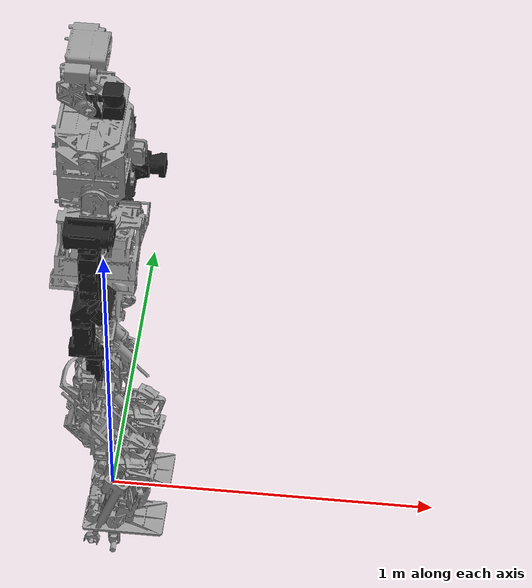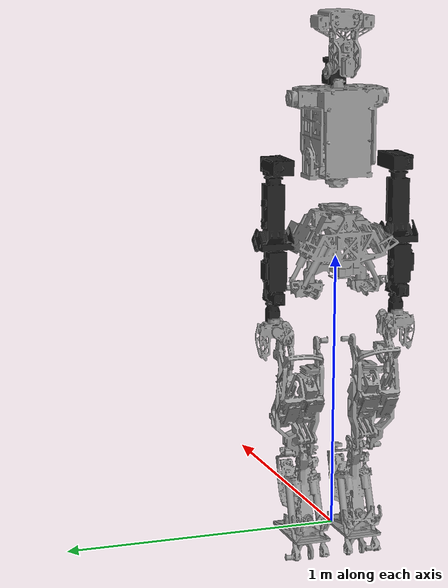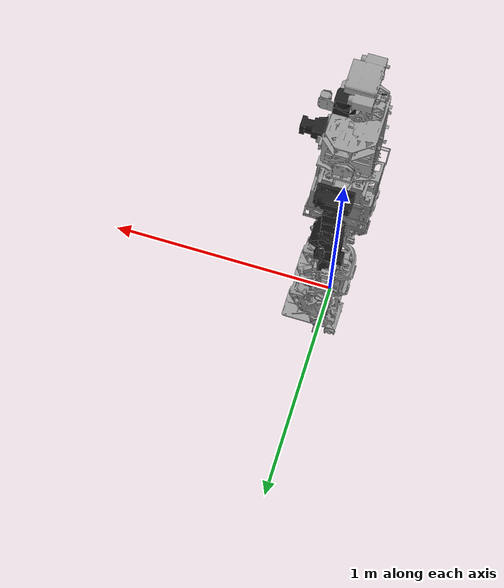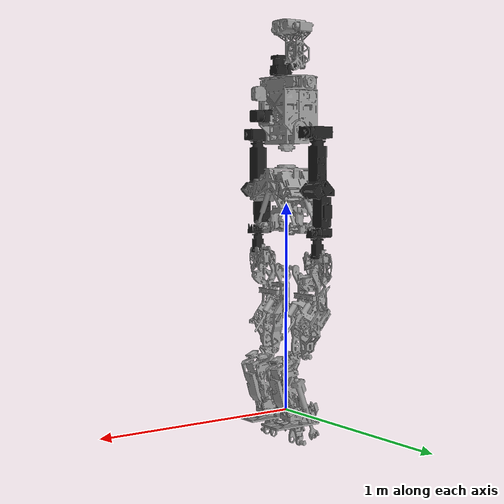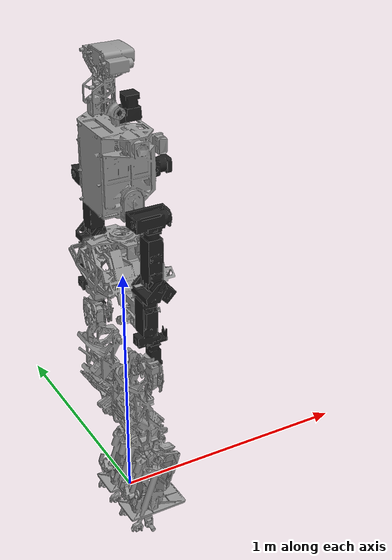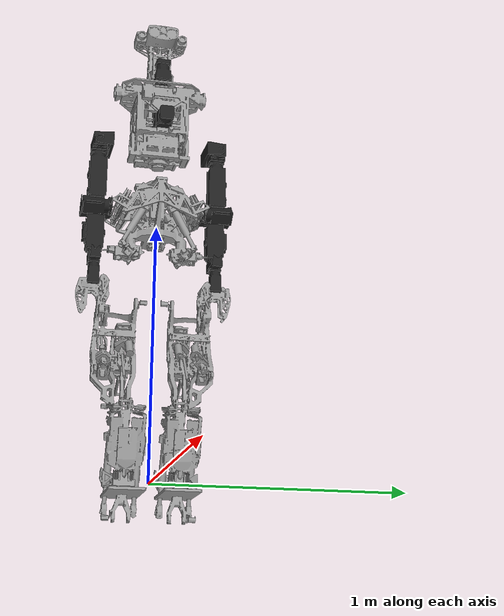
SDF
<?xml version="1.0" ?>
<sdf version="1.4">
<model name="thor">
  <plugin name="gz_comms_manager" filename="libgz_comms_manager.so" />
  <plugin name="gz_pose_manager" filename="libgz_pose_manager.so" />
  <static>false</static>

  <link name="pelvis">
    <pose>-0.0085 0 1.0180015 0 0 0</pose>
    <collision name="pelvis_collision">
      <geometry>
        <box>
          <size>0.25 0.3 0.3299971</size>
        </box>
      </geometry>
    </collision>
    <visual name="pelvis_visual">
      <pose>0.0085 -0 -1.0180015 0 0 0</pose>
      <geometry>
        <mesh>
					<uri>file://thor_description/model/meshes/pelvis.stl</uri>
					<scale>.001 .001 .001</scale>
				</mesh>
      </geometry>
      <material>
        <script>
          <uri>file://media/materials/scripts/gazebo.material</uri>
          <name>Gazebo/Gray</name>
        </script>
      </material>
    </visual>
    <inertial>
      <pose>-0.02034476 -0.000339931 0.014065804 0 0 0</pose>
      <mass>12.227102888619</mass>
      <inertia>
        <ixx>0.168786051</ixx>
        <iyy>0.151804339</iyy>
        <izz>0.183945912</izz>
        <iyz>0.000299081</iyz>
        <ixz>0.000191055</ixz>
        <ixy>0.000230307</ixy>
      </inertia>
    </inertial>
    <sensor name="imu_sensor" type="imu">
      <pose>0 0 0 0 0 1.5707963</pose>
      <always_on>1</always_on>
        <imu>
          <noise>
            <type>gaussian</type>
            <rate>
              <mean>0</mean>
              <stddev>0.0002</stddev>
              <bias_mean>7.5e-06</bias_mean>
              <bias_stddev>8e-07</bias_stddev>
            </rate>
            <accel>
              <mean>0</mean>
              <stddev>0.017</stddev>
              <bias_mean>0.1</bias_mean>
              <bias_stddev>0.001</bias_stddev>
            </accel>
          </noise>
        </imu>
      <visualize>1</visualize>
      <topic>imu_sensor</topic>
    </sensor>
  </link>

  <link name="l_thigh">
    <pose>-0.002281 0.117675 0.6903315 0 0 0</pose>
    <collision name="l_thigh_collision">
      <geometry>
        <box>
          <size>0.1 0.18965 0.4496629</size>
        </box>
      </geometry>
    </collision>
    <visual name="l_thigh_visual">
      <pose>0.0 -0.1 -0.8925 0 0 0</pose>
      <geometry>
        <mesh>
					<uri>file://thor_description/model/meshes/l_thigh.stl</uri>
					<scale>.001 .001 .001</scale>
				</mesh>
      </geometry>
      <material>
        <script>
          <uri>file://media/materials/scripts/gazebo.material</uri>
          <name>Gazebo/Gray</name>
        </script>
      </material>
    </visual>
    <inertial>
      <pose>-0.01776384 0.009771943 -0.017537909 0 0 0</pose>
      <mass>5.13807864986</mass>
      <inertia>
        <ixx>0.050251535</ixx>
        <iyy>0.04823009</iyy>
        <izz>0.01825638</izz>
        <iyz>0.000428731</iyz>
        <ixz>-0.00485734</ixz>
        <ixy>-0.000369726</ixy>
      </inertia>
    </inertial>
  </link>

  <link name="r_thigh">
    <pose>-0.002281 -0.117675 0.6903315 0 0 0</pose>
    <collision name="r_thigh_collision">
      <geometry>
        <box>
          <size>0.1 0.18965 0.4496629</size>
        </box>
      </geometry>
    </collision>
    <visual name="r_thigh_visual">
      <pose>0.0 0.1 -0.8925 0 0 0</pose>
      <geometry>
        <mesh>
					<uri>file://thor_description/model/meshes/r_thigh.stl</uri>
					<scale>.001 .001 .001</scale>
				</mesh>
      </geometry>
      <material>
        <script>
          <uri>file://media/materials/scripts/gazebo.material</uri>
          <name>Gazebo/Gray</name>
        </script>
      </material>
    </visual>
    <inertial>
      <pose>-0.017750387 -0.009800579 -0.017576732 0 0 0</pose>
      <mass>5.1402729320628</mass>
      <inertia>
        <ixx>0.050266937</ixx>
        <iyy>0.048269843</iyy>
        <izz>0.018232029</izz>
        <iyz>-0.000479151</iyz>
        <ixz>-0.004868597</ixz>
        <ixy>0.000400241</ixy>
      </inertia>
    </inertial>
  </link>

  <link name="l_shin">
    <pose>0.0190724 0.1021182 0.2811108 0 0 0</pose>
    <collision name="l_shin_collision">
      <geometry>
        <box>
          <size>0.1 0.13 0.4512008</size>
        </box>
      </geometry>
    </collision>
    <visual name="l_shin_visual">
      <pose>-0.0 -0.10 -0.4825 0 0 0</pose>
      <geometry>
        <mesh>
					<uri>file://thor_description/model/meshes/l_shin.stl</uri>
					<scale>.001 .001 .001</scale>
				</mesh>
      </geometry>
      <material>
        <script>
          <uri>file://media/materials/scripts/gazebo.material</uri>
          <name>Gazebo/Gray</name>
        </script>
      </material>
    </visual>
    <inertial>
      <pose>0.016452175 -0.001617389 0.041544431 0 0 0</pose>
      <mass>4.2301928995278</mass>
      <inertia>
        <ixx>0.042672286</ixx>
        <iyy>0.043770804</iyy>
        <izz>0.012910027</izz>
        <iyz>-0.000372327</iyz>
        <ixz>0.005863435</ixz>
        <ixy>-4.6942e-05</ixy>
      </inertia>
    </inertial>
  </link>

  <link name="r_shin">
    <pose>0.0190724 -0.1021182 0.2811108 0 0 0</pose>
    <collision name="r_shin_collision">
      <geometry>
        <box>
          <size>0.1 0.13 0.4512008</size>
        </box>
      </geometry>
    </collision>
    <visual name="r_shin_visual">
      <pose>-0.0 0.10 -0.4825 0 0 0</pose>
      <geometry>
        <mesh>
					<uri>file://thor_description/model/meshes/r_shin.stl</uri>
					<scale>.001 .001 .001</scale>
				</mesh>
      </geometry>
      <material>
        <script>
          <uri>file://media/materials/scripts/gazebo.material</uri>
          <name>Gazebo/Gray</name>
        </script>
      </material>
    </visual>
    <inertial>
      <pose>0.016452169 0.001835239 0.041544431 0 0 0</pose>
      <mass>4.2301928995278</mass>
      <inertia>
        <ixx>0.042672987</ixx>
        <iyy>0.043770806</iyy>
        <izz>0.012910729</izz>
        <iyz>0.000406027</iyz>
        <ixz>0.005863442</ixz>
        <ixy>6.7751e-05</ixy>
      </inertia>
    </inertial>
  </link>

  <link name="l_foot">
    <pose>0.025 0.1 0.0266724 0 0 0</pose>
    <collision name="l_foot_collision">
      <geometry>
        <box>
          <size>0.25 0.1485 0.05493235</size>
        </box>
      </geometry>
      <!-- From atlas model -->
      <surface>
        <friction>
          <ode>
            <mu>0.9</mu>
            <mu2>0.9</mu2>
            <fdir1>1 0 0</fdir1>
          </ode>
        </friction>
        <contact>
          <ode>
            <max_vel>1.0</max_vel>
            <min_depth>0.003</min_depth>
          </ode>
        </contact>
      </surface>
    </collision>
    <visual name="l_foot_visual">
      <pose>-0.0 -0.1 -0.0725 0 0 0</pose>
      <geometry>
        <mesh>
					<uri>file://thor_description/model/meshes/l_foot.stl</uri>
					<scale>.001 .001 .001</scale>
				</mesh>
      </geometry>
      <material>
        <script>
          <uri>file://media/materials/scripts/gazebo.material</uri>
          <name>Gazebo/Gray</name>
        </script>
      </material>
    </visual>
    <inertial>
      <pose>-0.028042516 0.00096434599999999 0.005344341 0 0 0</pose>
      <mass>1.7169625926048</mass>
      <inertia>
        <ixx>0.00336244</ixx>
        <iyy>0.006955959</iyy>
        <izz>0.007417438</izz>
        <iyz>3.0838e-05</iyz>
        <ixz>-0.001236319</ixz>
        <ixy>5.764e-06</ixy>
      </inertia>
    </inertial>
  </link>

  <link name="r_foot">
    <pose>0.025 -0.10075 0.0266724 0 0 0</pose>
    <collision name="r_foot_collision">
      <geometry>
        <box>
          <size>0.25 0.1485 0.05493235</size>
        </box>
      </geometry>
      <!-- From atlas model -->
      <surface>
        <friction>
          <ode>
            <mu>0.9</mu>
            <mu2>0.9</mu2>
            <fdir1>1 0 0</fdir1>
          </ode>
        </friction>
        <contact>
          <ode>
            <max_vel>1.0</max_vel>
            <min_depth>0.003</min_depth>
          </ode>
        </contact>
      </surface>
    </collision>
    <visual name="r_foot_visual">
      <pose>-0.0 0.1 -0.0725 0 0 0</pose>
      <geometry>
        <mesh>
					<uri>file://thor_description/model/meshes/r_foot.stl</uri>
					<scale>.001 .001 .001</scale>
				</mesh>
      </geometry>
      <material>
        <script>
          <uri>file://media/materials/scripts/gazebo.material</uri>
          <name>Gazebo/Gray</name>
        </script>
      </material>
    </visual>
    <inertial>
      <pose>-0.027942557 -0.00019983899999999 0.005337142 0 0 0</pose>
      <mass>1.7201733736363</mass>
      <inertia>
        <ixx>0.003363358</ixx>
        <iyy>0.006961913</iyy>
        <izz>0.007424205</izz>
        <iyz>-3.0884e-05</iyz>
        <ixz>-0.001236643</ixz>
        <ixy>-3.631e-06</ixy>
      </inertia>
    </inertial>
  </link>

  <link name="l_hip_yaw_trunnion">
    <pose>0 0.1 0.8925 0 0 0</pose>
    <!-- Axis = "z", -->
    <inertial>
      <mass>0.051573426573425</mass>
      <inertia>
        <ixx>0.0085833333333333</ixx>
        <iyy>0.0085833333333333</iyy>
        <izz>0.00075</izz>
        <ixy>0</ixy>
        <ixz>0</ixz>
        <iyz>0</iyz>
      </inertia>
    </inertial>
  </link>

  <link name="r_hip_yaw_trunnion">
    <pose>0 -0.1 0.8925 0 0 0</pose>
    <!-- Axis = "z", -->
    <inertial>
      <mass>0.051573426573425</mass>
      <inertia>
        <ixx>0.0085833333333333</ixx>
        <iyy>0.0085833333333333</iyy>
        <izz>0.00075</izz>
        <ixy>0</ixy>
        <ixz>0</ixz>
        <iyz>0</iyz>
      </inertia>
    </inertial>
  </link>

  <link name="l_hip_pitch_trunnion">
    <pose>0 0.1 0.8925 0 0 0</pose>
    <!-- Axis = "y", -->
    <inertial>
      <pose>0 0 0 1.5707963267949 0 0</pose>
      <mass>0.051573426573425</mass>
      <inertia>
        <ixx>0.0085833333333333</ixx>
        <iyy>0.0085833333333333</iyy>
        <izz>0.00075</izz>
        <ixy>0</ixy>
        <ixz>0</ixz>
        <iyz>0</iyz>
      </inertia>
    </inertial>
  </link>

  <link name="r_hip_pitch_trunnion">
    <pose>0 -0.1 0.8925 0 0 0</pose>
    <!-- Axis = "y", -->
    <inertial>
      <pose>0 0 0 1.5707963267949 0 0</pose>
      <mass>0.051573426573425</mass>
      <inertia>
        <ixx>0.0085833333333333</ixx>
        <iyy>0.0085833333333333</iyy>
        <izz>0.00075</izz>
        <ixy>0</ixy>
        <ixz>0</ixz>
        <iyz>0</iyz>
      </inertia>
    </inertial>
  </link>

  <link name="l_ankle_pitch_trunnion">
    <pose>0 0.1 0.0725 0 0 0</pose>
    <!-- Axis = "y", -->
    <inertial>
      <pose>0 0 0 1.5707963267949 0 0</pose>
      <mass>0.051573426573425</mass>
      <inertia>
        <ixx>0.0085833333333333</ixx>
        <iyy>0.0085833333333333</iyy>
        <izz>0.00075</izz>
        <ixy>0</ixy>
        <ixz>0</ixz>
        <iyz>0</iyz>
      </inertia>
    </inertial>
  </link>

  <link name="r_ankle_pitch_trunnion">
    <pose>0 -0.1 0.0725 0 0 0</pose>
    <!-- Axis = "y", -->
    <inertial>
      <pose>0 0 0 1.5707963267949 0 0</pose>
      <mass>0.051573426573425</mass>
      <inertia>
        <ixx>0.0085833333333333</ixx>
        <iyy>0.0085833333333333</iyy>
        <izz>0.00075</izz>
        <ixy>0</ixy>
        <ixz>0</ixz>
        <iyz>0</iyz>
      </inertia>
    </inertial>
  </link>

  <joint name="l_hip_yaw" type="revolute">
    <parent>
      pelvis
    </parent>
    <child>
      l_hip_yaw_trunnion
    </child>
    <axis>
      <xyz>0 0 1</xyz>
      <limit>
        <lower>-0.34906585039887</lower>
        <upper>0.78539816339745</upper>
        <effort>150</effort>
        <velocity>12</velocity>
      </limit>
      <dynamics>
        <damping>1.0</damping>
        <friction>0</friction>
      </dynamics>
    </axis>
    <physics>
      <ode>
        <cfm_damping>1</cfm_damping>
      </ode>
    </physics>
  </joint>

  <joint name="r_hip_yaw" type="revolute">
    <parent>
      pelvis
    </parent>
    <child>
      r_hip_yaw_trunnion
    </child>
    <axis>
      <xyz>0 0 1</xyz>
      <limit>
        <lower>-0.78539816339745</lower>
        <upper>0.34906585039887</upper>
        <effort>150</effort>
        <velocity>12</velocity>
      </limit>
      <dynamics>
        <damping>1.0</damping>
        <friction>0</friction>
      </dynamics>
    </axis>
    <physics>
      <ode>
        <cfm_damping>1</cfm_damping>
      </ode>
    </physics>
  </joint>

  <joint name="l_hip_roll" type="revolute">
    <parent>
      l_hip_yaw_trunnion
    </parent>
    <child>
      l_hip_pitch_trunnion
    </child>
    <axis>
      <xyz>1 0 0</xyz>
      <limit>
        <lower>-0.5235987755983</lower>
        <upper>0.78539816339745</upper>
        <effort>150</effort>
        <velocity>12</velocity>
      </limit>
      <dynamics>
        <damping>1.0</damping>
        <friction>0</friction>
      </dynamics>
    </axis>
    <physics>
      <ode>
        <cfm_damping>1</cfm_damping>
      </ode>
    </physics>
  </joint>

  <joint name="r_hip_roll" type="revolute">
    <parent>
      r_hip_yaw_trunnion
    </parent>
    <child>
      r_hip_pitch_trunnion
    </child>
    <axis>
      <xyz>1 0 0</xyz>
      <limit>
        <lower>-0.78539816339745</lower>
        <upper>0.5235987755983</upper>
        <effort>150</effort>
        <velocity>12</velocity>
      </limit>
      <dynamics>
        <damping>1.0</damping>
        <friction>0</friction>
      </dynamics>
    </axis>
    <physics>
      <ode>
        <cfm_damping>1</cfm_damping>
      </ode>
    </physics>
  </joint>

  <joint name="l_hip_pitch" type="revolute">
    <pose>0.002281 -0.017675 0.2021685 0 0 0</pose>
    <parent>
      l_hip_pitch_trunnion
    </parent>
    <child>
      l_thigh
    </child>
    <axis>
      <xyz>0 1 0</xyz>
      <limit>
        <lower>-2.0943951023932</lower>
        <upper>0.5235987755983</upper>
        <effort>150</effort>
        <velocity>12</velocity>
      </limit>
      <dynamics>
        <damping>1.0</damping>
        <friction>0</friction>
      </dynamics>
    </axis>
    <physics>
      <ode>
        <cfm_damping>1</cfm_damping>
      </ode>
    </physics>
  </joint>

  <joint name="r_hip_pitch" type="revolute">
    <pose>0.002281 0.017675 0.2021685 0 0 0</pose>
    <parent>
      r_hip_pitch_trunnion
    </parent>
    <child>
      r_thigh
    </child>
    <axis>
      <xyz>0 1 0</xyz>
      <limit>
        <lower>-2.0943951023932</lower>
        <upper>0.5235987755983</upper>
        <effort>150</effort>
        <velocity>12</velocity>
      </limit>
      <dynamics>
        <damping>1.0</damping>
        <friction>0</friction>
      </dynamics>
    </axis>
    <physics>
      <ode>
        <cfm_damping>1</cfm_damping>
      </ode>
    </physics>
  </joint>

  <joint name="l_knee_pitch" type="revolute">
    <pose>-0.0190724 -0.0021182 0.2013892 0 0 0</pose>
    <parent>
      l_thigh
    </parent>
    <child>
      l_shin
    </child>
    <axis>
      <xyz>0 1 0</xyz>
      <limit>
        <lower>0</lower>
        <upper>2.3561944901923</upper>
        <effort>150</effort>
        <velocity>12</velocity>
      </limit>
      <dynamics>
        <damping>1.0</damping>
        <friction>0</friction>
      </dynamics>
    </axis>
    <physics>
      <ode>
        <cfm_damping>1</cfm_damping>
      </ode>
    </physics>
  </joint>

  <joint name="r_knee_pitch" type="revolute">
    <pose>-0.0190724 0.0021182 0.2013892 0 0 0</pose>
    <parent>
      r_thigh
    </parent>
    <child>
      r_shin
    </child>
    <axis>
      <xyz>0 1 0</xyz>
      <limit>
        <lower>0</lower>
        <upper>2.3561944901923</upper>
        <effort>150</effort>
        <velocity>12</velocity>
      </limit>
      <dynamics>
        <damping>1.0</damping>
        <friction>0</friction>
      </dynamics>
    </axis>
    <physics>
      <ode>
        <cfm_damping>1</cfm_damping>
      </ode>
    </physics>
  </joint>

  <joint name="l_ankle_pitch" type="revolute">
    <parent>
      l_shin
    </parent>
    <child>
      l_ankle_pitch_trunnion
    </child>
    <axis>
      <xyz>0 1 0</xyz>
      <limit>
        <lower>-0.95993108859688</lower>
        <upper>0.61086523819802</upper>
        <effort>150</effort>
        <velocity>12</velocity>
      </limit>
      <dynamics>
        <damping>1.0</damping>
        <friction>0</friction>
      </dynamics>
    </axis>
    <physics>
      <ode>
        <cfm_damping>1</cfm_damping>
      </ode>
    </physics>
  </joint>

  <joint name="r_ankle_pitch" type="revolute">
    <parent>
      r_shin
    </parent>
    <child>
      r_ankle_pitch_trunnion
    </child>
    <axis>
      <xyz>0 1 0</xyz>
      <limit>
        <lower>-0.95993108859688</lower>
        <upper>0.61086523819802</upper>
        <effort>150</effort>
        <velocity>12</velocity>
      </limit>
      <dynamics>
        <damping>1.0</damping>
        <friction>0</friction>
      </dynamics>
    </axis>
    <physics>
      <ode>
        <cfm_damping>1</cfm_damping>
      </ode>
    </physics>
  </joint>

  <joint name="l_ankle_roll" type="revolute">
    <pose>-0.025 0 0.0458276 0 0 0</pose>
    <parent>
      l_ankle_pitch_trunnion
    </parent>
    <child>
      l_foot
    </child>
    <axis>
      <xyz>1 0 0</xyz>
      <limit>
        <lower>-0.5235987755983</lower>
        <upper>0.5235987755983</upper>
        <effort>150</effort>
        <velocity>12</velocity>
      </limit>
      <dynamics>
        <damping>1.0</damping>
        <friction>0</friction>
      </dynamics>
    </axis>
    <physics>
      <provide_feedback>1</provide_feedback>
      <ode>
        <cfm_damping>1</cfm_damping>
      </ode>
    </physics>
    <sensor name="l_foot_contact_sensor" type="force_torque">
      <pose>0.025 0.1 0.0266724 0 0 0</pose>
        <always_on>1</always_on>
        <update_rate>1000</update_rate>
        <force_torque>
          <frame>sensor</frame>
        </force_torque>
    </sensor>
  </joint>

  <joint name="r_ankle_roll" type="revolute">
    <pose>-0.025 0.00075 0.0458276 0 0 0</pose>
    <parent>
      r_ankle_pitch_trunnion
    </parent>
    <child>
      r_foot
    </child>
    <axis>
      <xyz>1 0 0</xyz>
      <limit>
        <lower>-0.5235987755983</lower>
        <upper>0.5235987755983</upper>
        <effort>150</effort>
        <velocity>12</velocity>
      </limit>
      <dynamics>
        <damping>1.0</damping>
        <friction>0</friction>
      </dynamics>
    </axis>
    <physics>
      <provide_feedback>1</provide_feedback>
      <ode>
        <cfm_damping>1</cfm_damping>
      </ode>
    </physics>
    <sensor name="r_foot_contact_sensor" type="force_torque">
      <pose>0.025 -0.10075 0.0266724 0 0 0</pose>
      <always_on>1</always_on>
      <contact>
        <collision>r_foot_collision</collision>
      </contact>
    </sensor>
  </joint>

  <joint name="torso_yaw" type="revolute">
    <parent>
      pelvis
    </parent>
    <child>
      waist_pitch_trunnion
    </child>
    <axis>
      <xyz>0 0 1</xyz>
      <limit>
        <lower>-0.78539816339745</lower>
        <upper>0.78539816339745</upper>
        <effort>150</effort>
        <velocity>12</velocity>
      </limit>
      <dynamics>
        <damping>1.0</damping>
        <friction>0</friction>
      </dynamics>
    </axis>
    <physics>
      <ode>
        <cfm_damping>1</cfm_damping>
      </ode>
    </physics>
  </joint>

  <link name="waist_pitch_trunnion">
    <pose>0 0 1.2575 0 0 0</pose>
    <!-- Axis = "y", -->
    <inertial>
      <pose>0 0 0 1.5707963267949 0 0</pose>
      <mass>0.051573426573425</mass>
      <inertia>
        <ixx>0.0085833333333333</ixx>
        <iyy>0.0085833333333333</iyy>
        <izz>0.00075</izz>
        <ixy>0</ixy>
        <ixz>0</ixz>
        <iyz>0</iyz>
      </inertia>
    </inertial>
  </link>

  <joint name="torso_pitch" type="revolute">
    <pose>-0.001 0 -0.09375 0 0 0</pose>
    <parent>
      waist_pitch_trunnion
    </parent>
    <child>
      chest
    </child>
    <axis>
      <xyz>0 1 0</xyz>
      <limit>
        <lower>-0.34906585039887</lower>
        <upper>0.34906585039887</upper>
        <effort>150</effort>
        <velocity>12</velocity>
      </limit>
      <dynamics>
        <damping>1.0</damping>
        <friction>0</friction>
      </dynamics>
    </axis>
    <physics>
      <ode>
        <cfm_damping>1</cfm_damping>
      </ode>
    </physics>
  </joint>

  <link name="chest">
    <pose>0.001 0 1.35125 0 0 0</pose>
    <collision name="chest_collision">
      <geometry>
        <box>
          <size>0.25 0.3 0.3685</size>
        </box>
      </geometry>
    </collision>
    <visual name="chest_visual">
      <pose>-0.001 -0 -1.2575 0 0 0</pose>
      <geometry>
        <mesh>
					<uri>file://thor_description/model/meshes/chest.stl</uri>
					<scale>.001 .001 .001</scale>
				</mesh>
      </geometry>
      <material>
        <script>
          <uri>file://media/materials/scripts/gazebo.material</uri>
          <name>Gazebo/Gray</name>
        </script>
      </material>
    </visual>
    <inertial>
      <pose>-0.010475235 0.003477582 0.016042633 0 0 0</pose>
      <mass>8.9112224908039</mass>
      <inertia>
        <ixx>0.212139518</ixx>
        <iyy>0.177608078</iyy>
        <izz>0.082558505</izz>
        <iyz>0.000482353</iyz>
        <ixz>-0.001780773</ixz>
        <ixy>0.000361146</ixy>
      </inertia>
    </inertial>
    <sensor name="camera.ptgrey" type="camera">
      <pose>0.1323009 -0.0675 0.2217387 0 0.611 0</pose>
      <camera>
        <horizontal_fov>1.75</horizontal_fov>
        <image>
          <width>640</width>
          <height>480</height>
          <format>R8G8B8</format>
        </image>
        <clip>
          <near>0.5</near>
          <far>30</far>
        </clip>
        <noise>
          <type>gaussian</type>
          <!-- Noise is sampled independently per pixel on each frame.
               That pixel's noise value is added to each of its color
               channels, which at that point lie in the range [0,1]. -->
          <mean>0.0</mean>
          <stddev>0.007</stddev>
        </noise>
      </camera>
      <plugin name="camera_controller" filename="libgazebo_ros_camera.so">
        <alwaysOn>true</alwaysOn>
        <updateRate>30.0</updateRate>
        <cameraName>chest/camera</cameraName>
        <imageTopicName>image_raw</imageTopicName>
        <cameraInfoTopicName>camera_info</cameraInfoTopicName>
        <frameName>camera.ptgrey</frameName>
        <hackBaseline>0.0</hackBaseline>
        <distortionK1>-0.293600</distortionK1>
        <distortionK2>0.212124</distortionK2>
        <distortionK3>-0.138326</distortionK3>
        <distortionT1>0.000764</distortionT1>
        <distortionT2>-0.000452</distortionT2>
      </plugin>
    </sensor>
  </link>

  <joint name="chest_lidar_pitch" type="revolute">
    <pose>-0.021 0.0075 -0.00099999999999989 0 0 0</pose>
    <parent>
      chest
    </parent>
    <child>
      chest_lidar
    </child>
    <axis>
      <xyz>0 1 0</xyz>
      <limit>
        <lower>-1.5707963267949</lower>
        <upper>1.5707963267949</upper>
        <effort>150</effort>
        <velocity>12</velocity>
      </limit>
      <dynamics>
        <damping>1.0</damping>
        <friction>0</friction>
      </dynamics>
    </axis>
    <physics>
      <ode>
        <cfm_damping>1</cfm_damping>
      </ode>
    </physics>
  </joint>

  <link name="chest_lidar">
    <pose>0.1491 -0.0075 1.41085 0 0 0</pose>
    <collision name="chest_lidar_collision">
      <geometry>
        <box>
          <size>0.092 0.075 0.062</size>
        </box>
      </geometry>
    </collision>
    <visual name="chest_lidar_visual">
      <pose>-0.1491 0.0075 -1.41085 0 0 0</pose>
      <geometry>
        <mesh>
					<uri>file://thor_description/model/meshes/chest_lidar.stl</uri>
					<scale>.001 .001 .001</scale>
				</mesh>
      </geometry>
      <material>
        <script>
          <uri>file://media/materials/scripts/gazebo.material</uri>
          <name>Gazebo/Black</name>
        </script>
      </material>
    </visual>
    <inertial>
      <pose>-0.009435154 0.00438778 -0.00088571400000004 0 0 0</pose>
      <mass>0.051573426573425</mass>
      <inertia>
        <ixx>0.000203256</ixx>
        <iyy>0.00035346</iyy>
        <izz>0.000382989</izz>
        <iyz>1.17e-07</iyz>
        <ixz>2.32e-07</ixz>
        <ixy>2.6199e-05</ixy>
      </inertia>
    </inertial>
    <sensor name="lidar.chest_hokuyo" type="ray">
      <!-- Hokuyo UTM-30LX-EW -->
      <always_on>1</always_on>
      <update_rate>40</update_rate>
      <pose>0.0195 0.0495 -0.00099999999999989 0 1.57079633 0</pose>
      <ray>
        <scan>
          <horizontal>
            <samples>1081</samples>
            <resolution>1</resolution>
            <min_angle>-2.35619449</min_angle>
            <max_angle>2.35619449</max_angle>
          </horizontal>
        </scan>
        <range>
          <min>.1</min>
          <max>70</max>
          <resolution>.05</resolution>
        </range>
        <noise>
          <type>gaussian</type>
          <mean>0.0</mean>
          <stddev>0.01</stddev>
        </noise>
      </ray>
      <plugin name="gazebo_ros_chest_hokuyo" filename="libgazebo_ros_laser.so">
        <topicName>/chest/laser/scan/</topicName>
        <frameName>chest_lidar_emitter</frameName>
      </plugin>
    </sensor>
  </link>

  <joint name="neck_yaw" type="revolute">
    <pose>0 -0.003 -0.024025 0 0 0</pose>
    <parent>
      chest
    </parent>
    <child>
      neck
    </child>
    <axis>
      <xyz>0 0 1</xyz>
      <limit>
        <lower>-1.5707963267949</lower>
        <upper>1.5707963267949</upper>
        <effort>150</effort>
        <velocity>12</velocity>
      </limit>
      <dynamics>
        <damping>1.0</damping>
        <friction>0</friction>
      </dynamics>
    </axis>
    <physics>
      <ode>
        <cfm_damping>1</cfm_damping>
      </ode>
    </physics>
  </joint>

  <link name="neck">
    <pose>0 0.003 1.559525 0 0 0</pose>
    <collision name="neck_collision">
      <geometry>
        <box>
          <size>0.0541 0.096 0.05405</size>
        </box>
      </geometry>
    </collision>
    <visual name="neck_visual">
      <pose>-0 0.0 -1.5625 0 0 0</pose>-->
      <geometry>
        <mesh>
					<uri>file://thor_description/model/meshes/neck.stl</uri>
					<scale>.001 .001 .001</scale>
				</mesh>
      </geometry>
      <material>
        <script>
          <uri>file://media/materials/scripts/gazebo.material</uri>
          <name>Gazebo/Gray</name>
        </script>
      </material>
    </visual>
    <inertial>
      <pose>1.2e-08 -0.002875317 0.00050305599999989 0 0 0</pose>
      <mass>0.42837005699299</mass>
      <inertia>
        <ixx>0.000336505</ixx>
        <iyy>0.000143407</iyy>
        <izz>0.000323735</izz>
        <iyz>-8.463e-06</iyz>
        <ixz>0</ixz>
        <ixy>-0</ixy>
      </inertia>
    </inertial>
  </link>

  <joint name="neck_pitch" type="revolute">
    <pose>0.0142568 0 -0.08855 0 0 0</pose>
    <parent>
      neck
    </parent>
    <child>
      head
    </child>
    <axis>
      <xyz>0 1 0</xyz>
      <limit>
        <lower>-0.5235987755983</lower>
        <upper>1.0471975511966</upper>
        <effort>150</effort>
        <velocity>12</velocity>
      </limit>
      <dynamics>
        <damping>1.0</damping>
        <friction>0</friction>
      </dynamics>
    </axis>
    <physics>
      <ode>
        <cfm_damping>1</cfm_damping>
      </ode>
    </physics>
  </joint>

  <link name="head">
    <pose>-0.0142568 0 1.65105 0 0 0</pose>
    <collision name="head_collision">
      <geometry>
        <box>
          <size>0.155386 0.102 0.2191</size>
        </box>
      </geometry>
    </collision>
    <visual name="head_visual">
      <pose>0.0 -0 -1.5625 0 0 0</pose>
      <geometry>
        <mesh>
					<uri>file://thor_description/model/meshes/head.stl</uri>
					<scale>.001 .001 .001</scale>
				</mesh>
      </geometry>
      <material>
        <script>
          <uri>file://media/materials/scripts/gazebo.material</uri>
          <name>Gazebo/Gray</name>
        </script>
      </material>
    </visual>
    <inertial>
      <pose>-0.004959974 4.1336e-05 0.056361706 0 0 0</pose>
      <mass>2.2650798087587</mass>
      <inertia>
        <ixx>0.013808097</ixx>
        <iyy>0.011370053</iyy>
        <izz>0.007199137</izz>
        <iyz>-9.74e-06</iyz>
        <ixz>0.002271466</ixz>
        <ixy>1.389e-06</ixy>
      </inertia>
    </inertial>
      <sensor name='stereo_camera' type='multicamera'>
        <update_rate>10</update_rate>
        <camera name='left'>
          <horizontal_fov>1.39626</horizontal_fov>
          <image>
            <width>1024</width>
            <height>544</height>
            <format>R8G8B8</format>
          </image>
          <clip>
            <near>0.02</near>
            <far>300</far>
          </clip>
          <noise>
            <type>gaussian</type>
            <mean>0</mean>
            <stddev>0.007</stddev>
          </noise>
        </camera>
        <camera name='right'>
          <pose frame=''>0 -0.07 0 0 -0 0</pose>
          <horizontal_fov>1.39626</horizontal_fov>
          <image>
            <width>1024</width>
            <height>544</height>
            <format>R8G8B8</format>
          </image>
          <clip>
            <near>0.02</near>
            <far>300</far>
          </clip>
          <noise>
            <type>gaussian</type>
            <mean>0</mean>
            <stddev>0.007</stddev>
          </noise>
        </camera>
        <pose frame=''>0.183847 -0.035 0.0773366 -3.14159 0.1309 5.33964e-23</pose>
      </sensor>
</link>

  <joint name="head_hokuyo_joint" type="revolute">
    <pose>-0.0098 0 0 0 0 0</pose>
    <parent>
      head
    </parent>
    <child>
      head_hokuyo_link
    </child>
    <axis>
      <xyz>1 0 0</xyz>
      <limit>
        <lower>-1e+16</lower>
        <upper>1e+16</upper>
        <effort>150</effort>
        <velocity>12</velocity>
      </limit>
      <dynamics>
        <damping>1.0</damping>
        <friction>0</friction>
      </dynamics>
    </axis>
    <physics>
      <ode>
        <cfm_damping>1</cfm_damping>
      </ode>
    </physics>
  </joint>

  <link name="head_hokuyo_link">
    <pose>0.0098 0 1.6515 0 0 0</pose>
    <collision name="head_hokuyo_link_collision">
      <geometry>
        <box>
          <size>0.1395 0.06 0.093</size>
        </box>
      </geometry>
    </collision>
    <visual name="head_hokuyo_link_visual">
      <pose>-0.0098 -0 -1.6515 0 0 0</pose>
      <geometry>
        <mesh>
					<uri>file://thor_description/model/meshes/head_lidar.stl</uri>
					<scale>.001 .001 .001</scale>
				</mesh>
      </geometry>
      <material>
        <script>
          <uri>file://media/materials/scripts/gazebo.material</uri>
          <name>Gazebo/Black</name>
        </script>
      </material>
    </visual>
    <inertial>
      <pose>0.015857021 -2.21e-06 -0.0076187240000001 0 0 0</pose>
      <mass>0.44774993965034</mass>
      <inertia>
        <ixx>0.000368817</ixx>
        <iyy>0.00087532</iyy>
        <izz>0.000707833</izz>
        <iyz>-2.1e-08</iyz>
        <ixz>-7.653e-06</ixz>
        <ixy>5.5e-08</ixy>
      </inertia>
    </inertial>
    <sensor name="lidar.head_hokuyo" type="ray">
      <!-- Hokuyo UTM-30LX-EW -->
      <always_on>1</always_on>
      <update_rate>40</update_rate>
      <pose>0.0397 0 0.02 0 0 0</pose>
      <ray>
        <scan>
          <horizontal>
            <samples>1081</samples>
            <resolution>1</resolution>
            <min_angle>-2.35619449</min_angle>
            <max_angle>2.35619449</max_angle>
          </horizontal>
        </scan>
        <range>
          <min>.1</min>
          <max>70</max>
          <resolution>.05</resolution>
        </range>
        <noise>
          <type>gaussian</type>
          <mean>0.0</mean>
          <stddev>0.01</stddev>
        </noise>
      </ray>
      <plugin name="gazebo_ros_head_hokuyo" filename="libgazebo_ros_laser.so">
        <topicName>/laser/scan/</topicName>
        <frameName>head_lidar_emitter</frameName>
      </plugin>
    </sensor>
  </link>

  <joint name="l_shoulder_pitch" type="revolute">
    <parent>
      chest
    </parent>
    <child>
      l_shoulder_pitch_trunnion
    </child>
    <axis>
      <xyz>0 1 0</xyz>
      <limit>
        <lower>-0.7418</lower>
        <upper>1.5707963267949</upper>
        <effort>150</effort>
        <velocity>12</velocity>
      </limit>
      <dynamics>
        <damping>1.0</damping>
        <friction>0</friction>
      </dynamics>
    </axis>
    <physics>
      <ode>
        <cfm_damping>1</cfm_damping>
      </ode>
    </physics>
  </joint>

  <joint name="r_shoulder_pitch" type="revolute">
    <parent>
      chest
    </parent>
    <child>
      r_shoulder_pitch_trunnion
    </child>
    <axis>
      <xyz>0 1 0</xyz>
      <limit>
        <lower>-0.7418</lower>
        <upper>1.5707963267949</upper>
        <effort>150</effort>
        <velocity>12</velocity>
      </limit>
      <dynamics>
        <damping>1.0</damping>
        <friction>0</friction>
      </dynamics>
    </axis>
    <physics>
      <ode>
        <cfm_damping>1</cfm_damping>
      </ode>
    </physics>
  </joint>

  <link name="l_shoulder_pitch_trunnion">
    <pose>0 0.2375 1.4715 0 0 0</pose>
    <!-- Axis = "y", -->
    <inertial>
      <pose>0 0 0 1.5707963267949 0 0</pose>
      <mass>0.051573426573425</mass>
      <inertia>
        <ixx>0.0085833333333333</ixx>
        <iyy>0.0085833333333333</iyy>
        <izz>0.00075</izz>
        <ixy>0</ixy>
        <ixz>0</ixz>
        <iyz>0</iyz>
      </inertia>
    </inertial>
  </link>

  <link name="r_shoulder_pitch_trunnion">
    <pose>0 -0.2375 1.4715 0 0 0</pose>
    <!-- Axis = "y", -->
    <collision name="r_shoulder_pitch_trunnion_collision">
      <pose>0 0 0 1.5707963267949 0 0</pose>
      <geometry>
        <cylinder>
          <radius>0.01</radius>
          <length>0.1</length>
        </cylinder>
      </geometry>
    </collision>
    <inertial>
      <pose>0 0 0 1.5707963267949 0 0</pose>
      <mass>0.051573426573425</mass>
      <inertia>
        <ixx>0.0085833333333333</ixx>
        <iyy>0.0085833333333333</iyy>
        <izz>0.00075</izz>
        <ixy>0</ixy>
        <ixz>0</ixz>
        <iyz>0</iyz>
      </inertia>
    </inertial>
  </link>

  <joint name="l_shoulder_roll" type="revolute">
    <parent>
      l_shoulder_pitch_trunnion
    </parent>
    <child>
      l_shoulder_yaw_trunnion
    </child>
    <axis>
      <xyz>1 0 0</xyz>
      <limit>
        <lower>0</lower>
        <upper>3.1415926535898</upper>
        <effort>150</effort>
        <velocity>12</velocity>
      </limit>
      <dynamics>
        <damping>1.0</damping>
        <friction>0</friction>
      </dynamics>
    </axis>
    <physics>
      <ode>
        <cfm_damping>1</cfm_damping>
      </ode>
    </physics>
  </joint>

  <joint name="r_shoulder_roll" type="revolute">
    <parent>
      r_shoulder_pitch_trunnion
    </parent>
    <child>
      r_shoulder_yaw_trunnion
    </child>
    <axis>
      <xyz>1 0 0</xyz>
      <limit>
        <lower>-3.1415926535898</lower>
        <upper>0</upper>
        <effort>150</effort>
        <velocity>12</velocity>
      </limit>
      <dynamics>
        <damping>1.0</damping>
        <friction>0</friction>
      </dynamics>
    </axis>
    <physics>
      <ode>
        <cfm_damping>1</cfm_damping>
      </ode>
    </physics>
  </joint>

  <link name="l_shoulder_yaw_trunnion">
    <pose>0 0.2375 1.4715 0 0 0</pose>
    <!-- Axis = "z", -->
    <inertial>
      <mass>0.051573426573425</mass>
      <inertia>
        <ixx>0.0085833333333333</ixx>
        <iyy>0.0085833333333333</iyy>
        <izz>0.00075</izz>
        <ixy>0</ixy>
        <ixz>0</ixz>
        <iyz>0</iyz>
      </inertia>
    </inertial>
  </link>

  <link name="r_shoulder_yaw_trunnion">
    <pose>0 -0.2375 1.4715 0 0 0</pose>
    <!-- Axis = "z", -->
    <collision name="r_shoulder_yaw_trunnion_collision">
      <geometry>
        <cylinder>
          <radius>0.01</radius>
          <length>0.1</length>
        </cylinder>
      </geometry>
    </collision>
    <inertial>
      <mass>0.051573426573425</mass>
      <inertia>
        <ixx>0.0085833333333333</ixx>
        <iyy>0.0085833333333333</iyy>
        <izz>0.00075</izz>
        <ixy>0</ixy>
        <ixz>0</ixz>
        <iyz>0</iyz>
      </inertia>
    </inertial>
  </link>

  <joint name="l_shoulder_yaw" type="revolute">
    <pose>0 0 0.1398848 0 0 0</pose>
    <parent>
      l_shoulder_yaw_trunnion
    </parent>
    <child>
      l_arm
    </child>
    <axis>
      <xyz>0 0 1</xyz>
      <limit>
        <lower>-3.1415926535898</lower>
        <upper>3.1415926535898</upper>
        <effort>150</effort>
        <velocity>12</velocity>
      </limit>
      <dynamics>
        <damping>1.0</damping>
        <friction>0</friction>
      </dynamics>
    </axis>
    <physics>
      <ode>
        <cfm_damping>1</cfm_damping>
      </ode>
    </physics>
  </joint>

  <joint name="r_shoulder_yaw" type="revolute">
    <pose>0 0 0.1398848 0 0 0</pose>
    <parent>
      r_shoulder_yaw_trunnion
    </parent>
    <child>
      r_arm
    </child>
    <axis>
      <xyz>0 0 1</xyz>
      <limit>
        <lower>-3.1415926535898</lower>
        <upper>3.1415926535898</upper>
        <effort>150</effort>
        <velocity>12</velocity>
      </limit>
      <dynamics>
        <damping>1.0</damping>
        <friction>0</friction>
      </dynamics>
    </axis>
    <physics>
      <ode>
        <cfm_damping>1</cfm_damping>
      </ode>
    </physics>
  </joint>

  <link name="l_arm">
    <pose>0 0.2375 1.3316152 0 0 0</pose>
    <collision name="l_arm_collision">
      <geometry>
        <box>
          <size>0.144 0.114 0.3337695</size>
        </box>
      </geometry>
    </collision>
    <visual name="l_arm_visual">
      <pose>-0 -0.2375 -1.4715 0 0 0</pose>
      <geometry>
        <mesh>
					<uri>file://thor_description/model/meshes/l_arm.stl</uri>
					<scale>.001 .001 .001</scale>
				</mesh>
      </geometry>
      <material>
        <script>
          <uri>file://media/materials/scripts/gazebo.material</uri>
          <name>Gazebo/Black</name>
        </script>
      </material>
    </visual>
    <inertial>
      <pose>0.007214087 -0.001779321 0.027015869 0 0 0</pose>
      <mass>3.0258177870279</mass>
      <inertia>
        <ixx>0.038478468</ixx>
        <iyy>0.039609455</iyy>
        <izz>0.004412843</izz>
        <iyz>-0.000681544</iyz>
        <ixz>-0.003774572</ixz>
        <ixy>4.9829e-05</ixy>
      </inertia>
    </inertial>
  </link>

  <link name="r_arm">
    <pose>0 -0.2375 1.3316152 0 0 0</pose>
    <collision name="r_arm_collision">
      <geometry>
        <box>
          <size>0.144 0.114 0.3337695</size>
        </box>
      </geometry>
    </collision>
    <visual name="r_arm_visual">
      <pose>-0 0.2375 -1.4715 0 0 0</pose>
      <geometry>
        <mesh>
					<uri>file://thor_description/model/meshes/r_arm.stl</uri>
					<scale>.001 .001 .001</scale>
				</mesh>
      </geometry>
      <material>
        <script>
          <uri>file://media/materials/scripts/gazebo.material</uri>
          <name>Gazebo/Black</name>
        </script>
      </material>
    </visual>
    <inertial>
      <pose>0.007213335 0.001779321 0.027015869 0 0 0</pose>
      <mass>3.0258177870279</mass>
      <inertia>
        <ixx>0.038478468</ixx>
        <iyy>0.039609764</iyy>
        <izz>0.004413151</izz>
        <iyz>0.000681544</iyz>
        <ixz>-0.003774703</ixz>
        <ixy>-4.9825e-05</ixy>
      </inertia>
    </inertial>
  </link>

  <joint name="l_elbow_pitch" type="revolute">
    <pose>0.0257566 0 0.1107567 0 0 0</pose>
    <parent>
      l_arm
    </parent>
    <child>
      l_forearm
    </child>
    <axis>
      <xyz>0 1 0</xyz>
      <limit>
        <lower>-2.763</lower>
        <upper>0</upper>
        <effort>150</effort>
        <velocity>12</velocity>
      </limit>
      <dynamics>
        <damping>1.0</damping>
        <friction>0</friction>
      </dynamics>
    </axis>
    <physics>
      <ode>
        <cfm_damping>1</cfm_damping>
      </ode>
    </physics>
  </joint>

  <joint name="r_elbow_pitch" type="revolute">
    <pose>0.0257566 0 0.1107567 0 0 0</pose>
    <parent>
      r_arm
    </parent>
    <child>
      r_forearm
    </child>
    <axis>
      <xyz>0 1 0</xyz>
      <limit>
        <lower>-2.763</lower>
        <upper>0</upper>
        <effort>150</effort>
        <velocity>12</velocity>
      </limit>
      <dynamics>
        <damping>1.0</damping>
        <friction>0</friction>
      </dynamics>
    </axis>
    <physics>
      <ode>
        <cfm_damping>1</cfm_damping>
      </ode>
    </physics>
  </joint>

  <link name="l_forearm">
    <pose>0.0042434 0.2375 1.0907433 0 0 0</pose>
    <collision name="l_forearm_collision">
      <geometry>
        <box>
          <size>0.0984867 0.12 0.2684867</size>
        </box>
      </geometry>
    </collision>
    <visual name="l_forearm_visual">
      <pose>-0.03 -0.2375 -1.2015 0 0 0</pose>
      <geometry>
        <mesh>
					<uri>file://thor_description/model/meshes/l_forearm.stl</uri>
					<scale>.001 .001 .001</scale>
				</mesh>
      </geometry>
      <material>
        <script>
          <uri>file://media/materials/scripts/gazebo.material</uri>
          <name>Gazebo/Black</name>
        </script>
      </material>
    </visual>
    <inertial>
      <pose>-0.004787739 0.00037668700000001 -0.024396152 0 0 0</pose>
      <mass>1.5466488026748</mass>
      <inertia>
        <ixx>0.006819683</ixx>
        <iyy>0.006750973</iyy>
        <izz>0.001205454</izz>
        <iyz>4.3534e-05</iyz>
        <ixz>0.000101312</ixz>
        <ixy>5.676e-06</ixy>
      </inertia>
    </inertial>
  </link>

  <link name="r_forearm">
    <pose>0.0042434 -0.2375 1.0907433 0 0 0</pose>
    <collision name="r_forearm_collision">
      <geometry>
        <box>
          <size>0.0984867 0.12 0.2684867</size>
        </box>
      </geometry>
    </collision>
    <visual name="r_forearm_visual">
      <pose>-0.03 0.2375 -1.2015 0 0 0</pose>
      <geometry>
        <mesh>
					<uri>file://thor_description/model/meshes/r_forearm.stl</uri>
					<scale>.001 .001 .001</scale>
				</mesh>
      </geometry>
      <material>
        <script>
          <uri>file://media/materials/scripts/gazebo.material</uri>
          <name>Gazebo/Black</name>
        </script>
      </material>
    </visual>
    <inertial>
      <pose>-0.004787739 8.3232999999988e-05 -0.024396152 0 0 0</pose>
      <mass>1.5466488026748</mass>
      <inertia>
        <ixx>0.006819886</ixx>
        <iyy>0.006750973</iyy>
        <izz>0.001205657</izz>
        <iyz>3.9504e-05</iyz>
        <ixz>0.000101316</ixz>
        <ixy>4.675e-06</ixy>
      </inertia>
    </inertial>
  </link>

  <link name="l_foreforearm">
    <pose>0 0.2375 0.885 0 0 0</pose>
    <collision name="l_foreforearm_collision">
      <geometry>
        <box>
          <size>0.096 0.048 0.15</size>
        </box>
      </geometry>
    </collision>
    <visual name="l_foreforearm_visual">
      <pose>-0 -0.2375 -0.9775 0 0 0</pose>
      <geometry>
        <mesh>
					<uri>file://thor_description/model/meshes/l_foreforearm.stl</uri>
					<scale>.001 .001 .001</scale>
				</mesh>
      </geometry>
      <material>
        <script>
          <uri>file://media/materials/scripts/gazebo.material</uri>
          <name>Gazebo/Black</name>
        </script>
      </material>
    </visual>
    <inertial>
      <pose>0.000452337 0 0.013026871 0 0 0</pose>
      <mass>0.4784829261888</mass>
      <inertia>
        <ixx>0.000584304</ixx>
        <iyy>0.000662668</iyy>
        <izz>0.000222334</izz>
        <iyz>-0</iyz>
        <ixz>1.3796e-05</ixz>
        <ixy>-0</ixy>
      </inertia>
    </inertial>
  </link>

  <link name="r_foreforearm">
    <pose>0 -0.2375 0.885 0 0 0</pose>
    <collision name="r_foreforearm_collision">
      <geometry>
        <box>
          <size>0.096 0.048 0.15</size>
        </box>
      </geometry>
    </collision>
    <visual name="r_foreforearm_visual">
      <pose>-0 0.2375 -0.9775 0 0 0</pose>
      <geometry>
        <mesh>
					<uri>file://thor_description/model/meshes/r_foreforearm.stl</uri>
					<scale>.001 .001 .001</scale>
				</mesh>
      </geometry>
      <material>
        <script>
          <uri>file://media/materials/scripts/gazebo.material</uri>
          <name>Gazebo/Black</name>
        </script>
      </material>
    </visual>
    <inertial>
      <pose>0.000452337 0 0.013026871 0 0 0</pose>
      <mass>0.4784829261888</mass>
      <inertia>
        <ixx>0.000584304</ixx>
        <iyy>0.000662668</iyy>
        <izz>0.000222334</izz>
        <iyz>-0</iyz>
        <ixz>1.3796e-05</ixz>
        <ixy>-0</ixy>
      </inertia>
    </inertial>
  </link>

  <joint name="l_wrist_yaw" type="revolute">
    <parent>
      l_forearm
    </parent>
    <child>
      l_wrist_yaw_trunnion
    </child>
    <axis>
      <xyz>0 0 1</xyz>
      <limit>
        <lower>-3.1415926535898</lower>
        <upper>2.2165</upper>
        <effort>150</effort>
        <velocity>12</velocity>
      </limit>
      <dynamics>
        <damping>1.0</damping>
        <friction>0</friction>
      </dynamics>
    </axis>
    <physics>
      <ode>
        <cfm_damping>1</cfm_damping>
      </ode>
    </physics>
  </joint>

  <joint name="r_wrist_yaw" type="revolute">
    <parent>
      r_forearm
    </parent>
    <child>
      r_wrist_yaw_trunnion
    </child>
    <axis>
      <xyz>0 0 1</xyz>
      <limit>
        <lower>-2.2165</lower>
        <upper>3.1415926535898</upper>
        <effort>150</effort>
        <velocity>12</velocity>
      </limit>
      <dynamics>
        <damping>1.0</damping>
        <friction>0</friction>
      </dynamics>
    </axis>
    <physics>
      <ode>
        <cfm_damping>1</cfm_damping>
      </ode>
    </physics>
  </joint>

  <link name="l_wrist_yaw_trunnion">
    <pose>0 0.2375 0.9775 0 0 0</pose>
    <!-- Axis = "z", -->
    <inertial>
      <mass>0.051573426573425</mass>
      <inertia>
        <ixx>0.0085833333333333</ixx>
        <iyy>0.0085833333333333</iyy>
        <izz>0.00075</izz>
        <ixy>0</ixy>
        <ixz>0</ixz>
        <iyz>0</iyz>
      </inertia>
    </inertial>
  </link>

  <link name="r_wrist_yaw_trunnion">
    <pose>0 -0.2375 0.9775 0 0 0</pose>
    <!-- Axis = "z", -->
    <inertial>
      <mass>0.051573426573425</mass>
      <inertia>
        <ixx>0.0085833333333333</ixx>
        <iyy>0.0085833333333333</iyy>
        <izz>0.00075</izz>
        <ixy>0</ixy>
        <ixz>0</ixz>
        <iyz>0</iyz>
      </inertia>
    </inertial>
  </link>

  <joint name="l_wrist_roll" type="revolute">
    <pose>0 0 0.0925 0 0 0</pose>
    <parent>
      l_wrist_yaw_trunnion
    </parent>
    <child>
      l_foreforearm
    </child>
    <axis>
      <xyz>1 0 0</xyz>
      <limit>
        <lower>-1.5675</lower>
        <upper>1.5675</upper>
        <effort>150</effort>
        <velocity>12</velocity>
      </limit>
      <dynamics>
        <damping>1.0</damping>
        <friction>0</friction>
      </dynamics>
    </axis>
    <physics>
      <ode>
        <cfm_damping>1</cfm_damping>
      </ode>
    </physics>
  </joint>

  <joint name="r_wrist_roll" type="revolute">
    <pose>0 0 0.0925 0 0 0</pose>
    <parent>
      r_wrist_yaw_trunnion
    </parent>
    <child>
      r_foreforearm
    </child>
    <axis>
      <xyz>1 0 0</xyz>
      <limit>
        <lower>-1.5675</lower>
        <upper>1.5675</upper>
        <effort>150</effort>
        <velocity>12</velocity>
      </limit>
      <dynamics>
        <damping>1.0</damping>
        <friction>0</friction>
      </dynamics>
    </axis>
    <physics>
      <ode>
        <cfm_damping>1</cfm_damping>
      </ode>
    </physics>
  </joint>

  <joint name="l_wrist_pitch" type="revolute">
    <pose>0.0155 0 0.0528 0 0 0</pose>
    <parent>
      l_foreforearm
    </parent>
    <child>
      l_palm
    </child>
    <axis>
      <!-- This is intentionally a yaw joint to match the current YRY wrist -->
      <xyz>0 0 1</xyz>
      <limit>
        <lower>-3.1415926535898</lower>
        <upper>3.1415926535898</upper>
        <effort>150</effort>
        <velocity>12</velocity>
      </limit>
      <dynamics>
        <damping>1.0</damping>
        <friction>0</friction>
      </dynamics>
    </axis>
    <physics>
      <provide_feedback>1</provide_feedback>
      <ode>
        <cfm_damping>1</cfm_damping>
      </ode>
    </physics>
  </joint>

  <joint name="r_wrist_pitch" type="revolute">
    <pose>0.0155 0 0.0528 0 0 0</pose>
    <parent>
      r_foreforearm
    </parent>
    <child>
      r_palm
    </child>
    <axis>
      <!-- This is intentionally a yaw joint to match the current YRY wrist -->
      <xyz>0 0 1</xyz>
      <limit>
        <lower>-3.1415926535898</lower>
        <upper>3.1415926535898</upper>
        <effort>150</effort>
        <velocity>12</velocity>
      </limit>
      <dynamics>
        <damping>1.0</damping>
        <friction>0</friction>
      </dynamics>
    </axis>
    <physics>
      <provide_feedback>1</provide_feedback>
      <ode>
        <cfm_damping>1</cfm_damping>
      </ode>
    </physics>
  </joint>

  <link name="l_palm">
    <self_collide>1</self_collide>
    <pose>-0.0155 0.2375 0.7897 0 0 0</pose>
    <collision name="l_palm_collision">
      <geometry>
        <box>
          <size>0.1 0.115 0.045</size>
        </box>
      </geometry>
    </collision>
    <visual name="l_palm_visual">
      <pose>0.0 -0.2375 -0.8425 0 0 0</pose>
      <geometry>
        <mesh>
					<uri>file://thor_description/model/meshes/l_palm.stl</uri>
					<scale>.001 .001 .001</scale>
				</mesh>
      </geometry>
      <material>
        <script>
          <uri>file://media/materials/scripts/gazebo.material</uri>
          <name>Gazebo/Gray</name>
        </script>
      </material>
    </visual>
    <inertial>
      <!-- These are the inertial properties of the hand, but we're storing them in the palm -->
      <pose>0.014102342 -0.003533558 0.002211669 0 0 0</pose>
      <mass>0.6948956863811</mass>
      <inertia>
        <ixx>0.001226466</ixx>
        <iyy>0.000902363</iyy>
        <izz>0.000978176</izz>
        <iyz>-1.6886e-05</iyz>
        <ixz>1.73e-06</ixz>
        <ixy>2.295e-06</ixy>
      </inertia>
    </inertial>
  </link>

  <link name="r_palm">
    <self_collide>1</self_collide>
    <pose>-0.0155 -0.2375 0.7897 0 0 0</pose>
    <collision name="r_palm_collision">
      <geometry>
        <box>
          <size>0.1 0.115 0.045</size>
        </box>
      </geometry>
    </collision>
    <visual name="r_palm_visual">
      <pose>0.0 0.2375 -0.8425 0 0 0</pose>
      <geometry>
        <mesh>
					<uri>file://thor_description/model/meshes/r_palm.stl</uri>
					<scale>.001 .001 .001</scale>
				</mesh>
      </geometry>
      <material>
        <script>
          <uri>file://media/materials/scripts/gazebo.material</uri>
          <name>Gazebo/Gray</name>
        </script>
      </material>
    </visual>
    <inertial>
      <!-- These are the inertial properties of the hand, but we're storing them in the palm -->
      <pose>0.014210541 0.003590313 0.0024129810000001 0 0 0</pose>
      <mass>0.69091040863634</mass>
      <inertia>
        <ixx>0.001216336</ixx>
        <iyy>0.000886794</iyy>
        <izz>0.000967611</izz>
        <iyz>1.3538e-05</iyz>
        <ixz>-4.852e-06</ixz>
        <ixy>-5.455e-06</ixy>
      </inertia>
    </inertial>
  </link>

  <joint name="l_pinky_finger" type="revolute">
    <pose>0.006 0.0114 0.045 0 0 0</pose>
    <parent>
      l_palm
    </parent>
    <child>
      l_finger_link
    </child>
    <axis>
      <xyz>1 0 0</xyz>
      <limit>
        <lower>-1.3131</lower>
        <upper>2.0448</upper>
        <effort>150</effort>
        <velocity>12</velocity>
      </limit>
      <dynamics>
        <damping>1.0</damping>
        <friction>0</friction>
      </dynamics>
    </axis>
    <physics>
      <ode>
        <cfm_damping>1</cfm_damping>
      </ode>
    </physics>
  </joint>

  <joint name="r_pinky_finger" type="revolute">
    <pose>0.006 -0.0114 0.045 0 0 0</pose>
    <parent>
      r_palm
    </parent>
    <child>
      r_finger_link
    </child>
    <axis>
      <xyz>1 0 0</xyz>
      <limit>
        <lower>-2.0448</lower>
        <upper>1.3131</upper>
        <effort>150</effort>
        <velocity>12</velocity>
      </limit>
      <dynamics>
        <damping>1.0</damping>
        <friction>0</friction>
      </dynamics>
    </axis>
    <physics>
      <ode>
        <cfm_damping>1</cfm_damping>
      </ode>
    </physics>
  </joint>

  <link name="l_finger_link">
    <pose>0.0245 0.19 0.7222 0 0 0</pose>
    <self_collide>1</self_collide>
    <collision name="l_finger_link_collision">
      <geometry>
        <box>
          <size>0.02 0.02 0.09</size>
        </box>
      </geometry>
    </collision>
    <visual name="l_finger_link_visual">
      <pose>-0.0245 -0.19 -0.7222 0 0 0</pose>
      <geometry>
        <mesh>
					<uri>file://thor_description/model/meshes/l_finger.stl</uri>
					<scale>.001 .001 .001</scale>
				</mesh>
      </geometry>
      <material>
        <script>
          <uri>file://media/materials/scripts/gazebo.material</uri>
          <name>Gazebo/Gray</name>
        </script>
      </material>
    </visual>
    <inertial>
      <pose>0.008130973 0.009188406 0.014190547 0 0 0</pose>
      <mass>0.06553488744755</mass>
      <inertia>
        <ixx>4.5416e-05</ixx>
        <iyy>4.2966e-05</iyy>
        <izz>5.913e-06</izz>
        <iyz>-1.243e-06</iyz>
        <ixz>1.898e-06</ixz>
        <ixy>-3.89e-07</ixy>
      </inertia>
    </inertial>
  </link>

  <link name="r_finger_link">
    <pose>0.0245 -0.19 0.7222 0 0 0</pose>
    <self_collide>1</self_collide>
    <collision name="r_finger_link_collision">
      <geometry>
        <box>
          <size>0.02 0.02 0.09</size>
        </box>
      </geometry>
    </collision>
    <visual name="r_finger_link_visual">
      <pose>-0.0245 0.19 -0.7222 0 0 0</pose>
      <geometry>
        <mesh>
					<uri>file://thor_description/model/meshes/r_finger.stl</uri>
					<scale>.001 .001 .001</scale>
				</mesh>
      </geometry>
      <material>
        <script>
          <uri>file://media/materials/scripts/gazebo.material</uri>
          <name>Gazebo/Gray</name>
        </script>
      </material>
    </visual>
    <inertial>
      <pose>0.007840062 -0.00946279 0.013079409 0 0 0</pose>
      <mass>0.16729933036713</mass>
      <inertia>
        <ixx>0.000117267</ixx>
        <iyy>0.000110685</iyy>
        <izz>1.4689e-05</izz>
        <iyz>2.888e-06</iyz>
        <ixz>4.075e-06</ixz>
        <ixy>9.96e-07</ixy>
      </inertia>
    </inertial>
  </link>

  <joint name="l_index_finger" type="revolute">
    <pose>0.0225 0.0114 0.05 0 0 0</pose>
    <parent>
      l_palm
    </parent>
    <child>
      l_gripper_link
    </child>
    <axis>
      <xyz>1 0 0</xyz>
      <limit>
        <lower>-1.3131</lower>
        <upper>2.0448</upper>
        <effort>150</effort>
        <velocity>12</velocity>
      </limit>
      <dynamics>
        <damping>1.0</damping>
        <friction>0</friction>
      </dynamics>
    </axis>
    <physics>
      <ode>
        <cfm_damping>1</cfm_damping>
      </ode>
    </physics>
  </joint>

  <joint name="r_index_finger" type="revolute">
    <pose>0.0225 -0.0114 0.05 0 0 0</pose>
    <parent>
      r_palm
    </parent>
    <child>
      r_gripper_link
    </child>
    <axis>
      <xyz>1 0 0</xyz>
      <limit>
        <lower>-2.0448</lower>
        <upper>1.3131</upper>
        <effort>150</effort>
        <velocity>12</velocity>
      </limit>
      <dynamics>
        <damping>1.0</damping>
        <friction>0</friction>
      </dynamics>
    </axis>
    <physics>
      <ode>
        <cfm_damping>1</cfm_damping>
      </ode>
    </physics>
  </joint>

  <link name="l_gripper_link">
    <pose>-0.0555 0.19 0.7172 0 0 0</pose>
    <self_collide>1</self_collide>
    <collision name="l_gripper_link_collision">
      <geometry>
        <box>
          <size>0.02 0.02 0.1</size>
        </box>
      </geometry>
    </collision>
    <visual name="l_gripper_link_visual">
      <pose>0.0555 -0.19 -0.7172 0 0 0</pose>
      <geometry>
        <mesh>
					<uri>file://thor_description/model/meshes/l_gripper.stl</uri>
					<scale>.001 .001 .001</scale>
				</mesh>
      </geometry>
      <material>
        <script>
          <uri>file://media/materials/scripts/gazebo.material</uri>
          <name>Gazebo/Gray</name>
        </script>
      </material>
    </visual>
    <inertial>
      <pose>0.020948456 0.009653928 0.014489612 0 0 0</pose>
      <mass>0.15047602807692</mass>
      <inertia>
        <ixx>9.5861e-05</ixx>
        <iyy>9.1176e-05</iyy>
        <izz>1.2994e-05</izz>
        <iyz>-2.408e-06</iyz>
        <ixz>-2.577e-06</ixz>
        <ixy>9.41e-07</ixy>
      </inertia>
    </inertial>
  </link>

  <link name="r_gripper_link">
    <pose>-0.0555 -0.19 0.7172 0 0 0</pose>
    <self_collide>1</self_collide>
    <collision name="r_gripper_link_collision">
      <geometry>
        <box>
          <size>0.02 0.02 0.1</size>
        </box>
      </geometry>
    </collision>
    <visual name="r_gripper_link_visual">
      <pose>0.0555 0.19 -0.7172 0 0 0</pose>
      <geometry>
        <mesh>
					<uri>file://thor_description/model/meshes/r_gripper.stl</uri>
					<scale>.001 .001 .001</scale>
				</mesh>
      </geometry>
      <material>
        <script>
          <uri>file://media/materials/scripts/gazebo.material</uri>
          <name>Gazebo/Gray</name>
        </script>
      </material>
    </visual>
    <inertial>
      <pose>0.021009684 -0.009386331 0.021940508 0 0 0</pose>
      <mass>0.071959428391606</mass>
      <inertia>
        <ixx>5.1654e-05</ixx>
        <iyy>4.9064e-05</iyy>
        <izz>6.653e-06</izz>
        <iyz>8.56e-07</iyz>
        <ixz>-6.44e-07</ixz>
        <ixy>-4.79e-07</ixy>
      </inertia>
    </inertial>
  </link>
</model>
</sdf>
